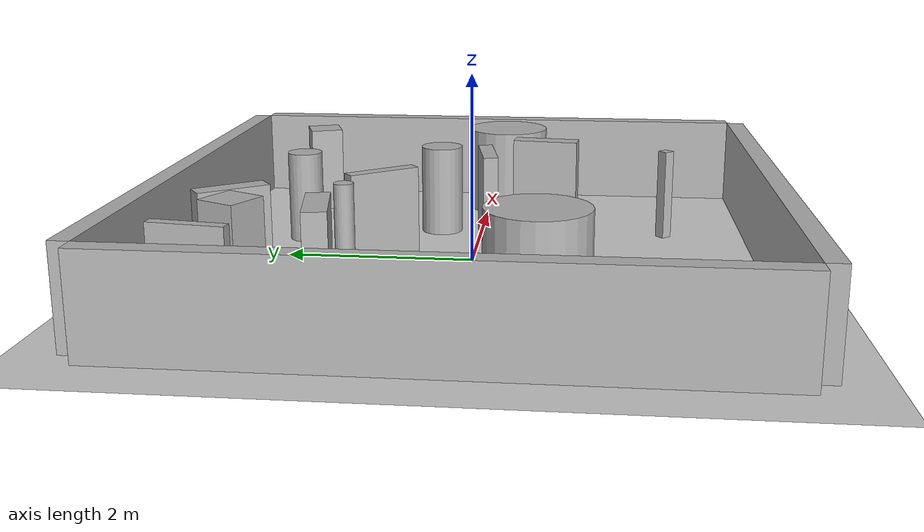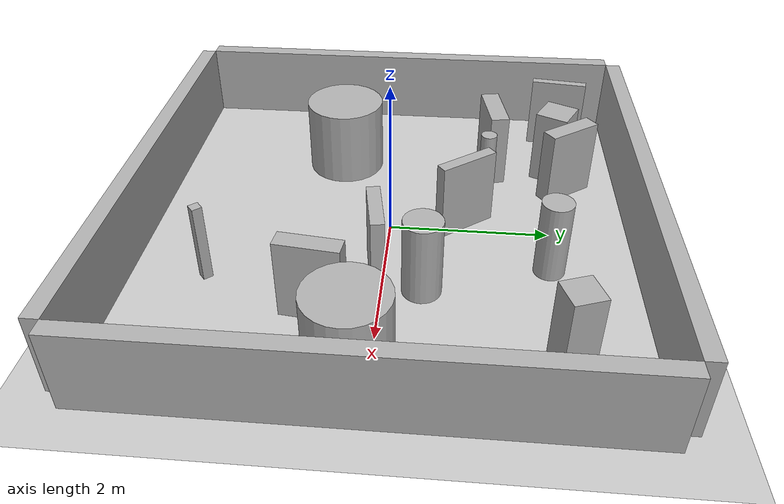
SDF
<sdf version='1.12'>
  <world name='empty'>
    <physics name='1ms' type='ignored'>
      <max_step_size>0.001</max_step_size>
      <real_time_factor>1</real_time_factor>
      <real_time_update_rate>1000</real_time_update_rate>
    </physics>
    <plugin name='gz::sim::systems::Physics' filename='gz-sim-physics-system'/>
    <plugin name='gz::sim::systems::UserCommands' filename='gz-sim-user-commands-system'/>
    <plugin name='gz::sim::systems::SceneBroadcaster' filename='gz-sim-scene-broadcaster-system'/>
    <plugin name='gz::sim::systems::Contact' filename='gz-sim-contact-system'/>
    <gravity>0 0 -9.8000000000000007</gravity>
    <magnetic_field>5.5644999999999998e-06 2.2875799999999999e-05 -4.2388400000000002e-05</magnetic_field>
    <atmosphere type='adiabatic'/>
    <scene>
      <ambient>0.400000006 0.400000006 0.400000006 1</ambient>
      <background>0.699999988 0.699999988 0.699999988 1</background>
      <shadows>true</shadows>
    </scene>
    <model name='ground_plane'>
      <static>true</static>
      <link name='link'>
        <collision name='collision'>
          <geometry>
            <plane>
              <normal>0 0 1</normal>
              <size>100 100</size>
            </plane>
          </geometry>
          <surface>
            <friction>
              <ode/>
            </friction>
            <bounce/>
            <contact/>
          </surface>
        </collision>
        <visual name='visual'>
          <geometry>
            <plane>
              <normal>0 0 1</normal>
              <size>100 100</size>
            </plane>
          </geometry>
          <material>
            <ambient>0.800000012 0.800000012 0.800000012 1</ambient>
            <diffuse>0.800000012 0.800000012 0.800000012 1</diffuse>
            <specular>0.800000012 0.800000012 0.800000012 1</specular>
          </material>
        </visual>
        <pose>0 0 0 0 0 0</pose>
        <inertial>
          <pose>0 0 0 0 0 0</pose>
          <mass>1</mass>
          <inertia>
            <ixx>1</ixx>
            <ixy>0</ixy>
            <ixz>0</ixz>
            <iyy>1</iyy>
            <iyz>0</iyz>
            <izz>1</izz>
          </inertia>
        </inertial>
        <enable_wind>false</enable_wind>
      </link>
      <pose>0 0 0 0 0 0</pose>
      <self_collide>false</self_collide>
    </model>
    <model name='fence_1'>
      <plugin filename="gz-sim-touchplugin-system"
              name="gz::sim::systems::TouchPlugin">
          <target>turtlebot3_burger</target>
          <namespace>fence</namespace>
          <time>0.001</time>
          <enabled>true</enabled>
      </plugin>
      <pose>-3.1 -1.0994676924413233e-07 0.49999932681900072 -1.9602143549339623e-08 -2.4822068816099727e-09 4.907735144525877e-08</pose>
      <link name='box_link'>
        <sensor name='sensor_contact' type='contact'>
            <contact>
                <collision>box_collision</collision>
            </contact>
        </sensor>
        <inertial>
          <inertia>
            <ixx>16.666</ixx>
            <ixy>0</ixy>
            <ixz>0</ixz>
            <iyy>16.666</iyy>
            <iyz>0</iyz>
            <izz>16.666</izz>
          </inertia>
          <mass>10</mass>
          <pose>0 0 0 0 0 0</pose>
        </inertial>
        <collision name='box_collision'>
          <geometry>
            <box>
              <size>0.2 6 1</size>
            </box>
          </geometry>
          <surface>
            <friction>
              <ode/>
            </friction>
            <bounce/>
            <contact/>
          </surface>
        </collision>
        <visual name='box_visual'>
          <geometry>
            <box>
              <size>0.2 6 1</size>
            </box>
          </geometry>
          <material>
            <ambient>0.300000012 0.300000012 0.300000012 1</ambient>
            <diffuse>0.699999988 0.699999988 0.699999988 1</diffuse>
            <specular>1 1 1 1</specular>
          </material>
        </visual>
        <pose>0 0 0 0 0 0</pose>
        <enable_wind>false</enable_wind>
      </link>
      <static>false</static>
      <self_collide>false</self_collide>
    </model>
    <model name='fence_2'>
      <plugin filename="gz-sim-touchplugin-system"
              name="gz::sim::systems::TouchPlugin">
          <target>turtlebot3_burger</target>
          <namespace>fence</namespace>
          <time>0.001</time>
          <enabled>true</enabled>
      </plugin>
      <pose>3.1 -3.5138676988246148e-07 0.49999914610721918 -4.473583661194936e-08 3.4724102697001128e-10 3.9038962250827841e-08</pose>
      <link name='box_link'>
        <sensor name='sensor_contact' type='contact'>
            <contact>
                <collision>box_collision</collision>
            </contact>
        </sensor>
        <inertial>
          <inertia>
            <ixx>16.666</ixx>
            <ixy>0</ixy>
            <ixz>0</ixz>
            <iyy>16.666</iyy>
            <iyz>0</iyz>
            <izz>16.666</izz>
          </inertia>
          <mass>10</mass>
          <pose>0 0 0 0 0 0</pose>
        </inertial>
        <collision name='box_collision'>
          <geometry>
            <box>
              <size>0.2 6 1</size>
            </box>
          </geometry>
          <surface>
            <friction>
              <ode/>
            </friction>
            <bounce/>
            <contact/>
          </surface>
        </collision>
        <visual name='box_visual'>
          <geometry>
            <box>
              <size>0.2 6 1</size>
            </box>
          </geometry>
          <material>
            <ambient>0.300000012 0.300000012 0.300000012 1</ambient>
            <diffuse>0.699999988 0.699999988 0.699999988 1</diffuse>
            <specular>1 1 1 1</specular>
          </material>
        </visual>
        <pose>0 0 0 0 0 0</pose>
        <enable_wind>false</enable_wind>
      </link>
      <static>false</static>
      <self_collide>false</self_collide>
    </model>
    <model name='fence_3'>
      <plugin filename="gz-sim-touchplugin-system"
              name="gz::sim::systems::TouchPlugin">
          <target>turtlebot3_burger</target>
          <namespace>fence</namespace>
          <time>0.001</time>
          <enabled>true</enabled>
      </plugin>
      <pose>-1.2624896680003741e-07 3.1 0.49999892895764775 -6.8684635263476807e-09 8.8765153466269893e-08 -8.9611825445029425e-09</pose>
      <link name='box_link'>
        <sensor name='sensor_contact' type='contact'>
            <contact>
                <collision>box_collision</collision>
            </contact>
        </sensor>
        <inertial>
          <inertia>
            <ixx>16.666</ixx>
            <ixy>0</ixy>
            <ixz>0</ixz>
            <iyy>16.666</iyy>
            <iyz>0</iyz>
            <izz>16.666</izz>
          </inertia>
          <mass>10</mass>
          <pose>0 0 0 0 0 0</pose>
        </inertial>
        <collision name='box_collision'>
          <geometry>
            <box>
              <size>6 0.2 1</size>
            </box>
          </geometry>
          <surface>
            <friction>
              <ode/>
            </friction>
            <bounce/>
            <contact/>
          </surface>
        </collision>
        <visual name='box_visual'>
          <geometry>
            <box>
              <size>6 0.2 1</size>
            </box>
          </geometry>
          <material>
            <ambient>0.300000012 0.300000012 0.300000012 1</ambient>
            <diffuse>0.699999988 0.699999988 0.699999988 1</diffuse>
            <specular>1 1 1 1</specular>
          </material>
        </visual>
        <pose>0 0 0 0 0 0</pose>
        <enable_wind>false</enable_wind>
      </link>
      <static>false</static>
      <self_collide>false</self_collide>
    </model>
    <model name='fence_4'>
      <plugin filename="gz-sim-touchplugin-system"
              name="gz::sim::systems::TouchPlugin">
          <target>turtlebot3_burger</target>
          <namespace>fence</namespace>
          <time>0.001</time>
          <enabled>true</enabled>
      </plugin>
      <pose>3.1165417824908246e-07 -3.1 0.49999908319707276 -4.6068191654925905e-09 -6.3004293022832624e-08 2.8392683620853e-09</pose>
      <link name='box_link'>
        <sensor name='sensor_contact' type='contact'>
            <contact>
                <collision>box_collision</collision>
            </contact>
        </sensor>
        <inertial>
          <inertia>
            <ixx>16.666</ixx>
            <ixy>0</ixy>
            <ixz>0</ixz>
            <iyy>16.666</iyy>
            <iyz>0</iyz>
            <izz>16.666</izz>
          </inertia>
          <mass>10</mass>
          <pose>0 0 0 0 0 0</pose>
        </inertial>
        <collision name='box_collision'>
          <geometry>
            <box>
              <size>6 0.2 1</size>
            </box>
          </geometry>
          <surface>
            <friction>
              <ode/>
            </friction>
            <bounce/>
            <contact/>
          </surface>
        </collision>
        <visual name='box_visual'>
          <geometry>
            <box>
              <size>6 0.2 1</size>
            </box>
          </geometry>
          <material>
            <ambient>0.300000012 0.300000012 0.300000012 1</ambient>
            <diffuse>0.699999988 0.699999988 0.699999988 1</diffuse>
            <specular>1 1 1 1</specular>
          </material>
        </visual>
        <pose>0 0 0 0 0 0</pose>
        <enable_wind>false</enable_wind>
      </link>
      <static>false</static>
      <self_collide>false</self_collide>
    </model>
    <model name='cylinder_0'>
        <plugin filename="gz-sim-touchplugin-system"            name="gz::sim::systems::TouchPlugin">        <target>turtlebot3_burger</target>        <namespace>obstacle</namespace>        <time>0.001</time>        <enabled>true</enabled>    </plugin>    <pose>0.6914615021173498 1.963044617363221 0.5 0.0 0.0 0.0</pose>
        <link name='cylinder_link'>
        <sensor name='sensor_contact' type='contact'>          <contact>              <collision>cylinder_collision</collision>          </contact>      </sensor>      <inertial>
            <inertia>
            <ixx>11.07496973277691</ixx>
            <ixy>0</ixy>
            <ixz>0</ixz>
            <iyy>11.07496973277691</iyy>
            <iyz>0</iyz>
            <izz>2.149939465553822</izz>
            </inertia>
            <mass>120</mass>
            <pose>0 0 0 0 0 0</pose>
        </inertial>
        <collision name='cylinder_collision'>
            <geometry>
            <cylinder>
                <radius>0.189294279960851</radius>
                <length>1.0</length>
            </cylinder>
            </geometry>
            <surface>
            <friction>
                <ode/>
            </friction>
            <bounce/>
            <contact/>
            </surface>
        </collision>
        <visual name='cylinder_visual'>
            <geometry>
            <cylinder>
                <radius>0.189294279960851</radius>
                <length>1.0</length>
            </cylinder>
            </geometry>
            <material>
            <ambient>0.300000012 0.300000012 0.300000012 1</ambient>
            <diffuse>0.699999988 0.699999988 0.699999988 1</diffuse>
            <specular>1 1 1 1</specular>
            </material>
        </visual>
        <pose>0 0 0 0 0 0</pose>
        <enable_wind>false</enable_wind>
        </link>
        <static>false</static>
        <self_collide>false</self_collide>
    </model>
    <model name='cylinder_1'>
        <plugin filename="gz-sim-touchplugin-system"            name="gz::sim::systems::TouchPlugin">        <target>turtlebot3_burger</target>        <namespace>obstacle</namespace>        <time>0.001</time>        <enabled>true</enabled>    </plugin>    <pose>1.169064315733623 0.462959752651976 0.5 0.0 0.0 0.0</pose>
        <link name='cylinder_link'>
        <sensor name='sensor_contact' type='contact'>          <contact>              <collision>cylinder_collision</collision>          </contact>      </sensor>      <inertial>
            <inertia>
            <ixx>11.65682761408987</ixx>
            <ixy>0</ixy>
            <ixz>0</ixz>
            <iyy>11.65682761408987</iyy>
            <iyz>0</iyz>
            <izz>3.313655228179743</izz>
            </inertia>
            <mass>120</mass>
            <pose>0 0 0 0 0 0</pose>
        </inertial>
        <collision name='cylinder_collision'>
            <geometry>
            <cylinder>
                <radius>0.23500550448091434</radius>
                <length>1.0</length>
            </cylinder>
            </geometry>
            <surface>
            <friction>
                <ode/>
            </friction>
            <bounce/>
            <contact/>
            </surface>
        </collision>
        <visual name='cylinder_visual'>
            <geometry>
            <cylinder>
                <radius>0.23500550448091434</radius>
                <length>1.0</length>
            </cylinder>
            </geometry>
            <material>
            <ambient>0.300000012 0.300000012 0.300000012 1</ambient>
            <diffuse>0.699999988 0.699999988 0.699999988 1</diffuse>
            <specular>1 1 1 1</specular>
            </material>
        </visual>
        <pose>0 0 0 0 0 0</pose>
        <enable_wind>false</enable_wind>
        </link>
        <static>false</static>
        <self_collide>false</self_collide>
    </model>
    <model name='cylinder_2'>
        <plugin filename="gz-sim-touchplugin-system"            name="gz::sim::systems::TouchPlugin">        <target>turtlebot3_burger</target>        <namespace>obstacle</namespace>        <time>0.001</time>        <enabled>true</enabled>    </plugin>    <pose>-0.7567749456397475 1.212950950221531 0.5 0.0 0.0 0.0</pose>
        <link name='cylinder_link'>
        <sensor name='sensor_contact' type='contact'>          <contact>              <collision>cylinder_collision</collision>          </contact>      </sensor>      <inertial>
            <inertia>
            <ixx>10.307106692471024</ixx>
            <ixy>0</ixy>
            <ixz>0</ixz>
            <iyy>10.307106692471024</iyy>
            <iyz>0</iyz>
            <izz>0.6142133849420468</izz>
            </inertia>
            <mass>120</mass>
            <pose>0 0 0 0 0 0</pose>
        </inertial>
        <collision name='cylinder_collision'>
            <geometry>
            <cylinder>
                <radius>0.10117751602522229</radius>
                <length>1.0</length>
            </cylinder>
            </geometry>
            <surface>
            <friction>
                <ode/>
            </friction>
            <bounce/>
            <contact/>
            </surface>
        </collision>
        <visual name='cylinder_visual'>
            <geometry>
            <cylinder>
                <radius>0.10117751602522229</radius>
                <length>1.0</length>
            </cylinder>
            </geometry>
            <material>
            <ambient>0.300000012 0.300000012 0.300000012 1</ambient>
            <diffuse>0.699999988 0.699999988 0.699999988 1</diffuse>
            <specular>1 1 1 1</specular>
            </material>
        </visual>
        <pose>0 0 0 0 0 0</pose>
        <enable_wind>false</enable_wind>
        </link>
        <static>false</static>
        <self_collide>false</self_collide>
    </model>
    <model name='cylinder_3'>
        <plugin filename="gz-sim-touchplugin-system"            name="gz::sim::systems::TouchPlugin">        <target>turtlebot3_burger</target>        <namespace>obstacle</namespace>        <time>0.001</time>        <enabled>true</enabled>    </plugin>    <pose>2.4035130023200395 -0.22173195348658048 0.5 0.0 0.0 0.0</pose>
        <link name='cylinder_link'>
        <sensor name='sensor_contact' type='contact'>          <contact>              <collision>cylinder_collision</collision>          </contact>      </sensor>      <inertial>
            <inertia>
            <ixx>16.886137474891783</ixx>
            <ixy>0</ixy>
            <ixz>0</ixz>
            <iyy>16.886137474891783</iyy>
            <iyz>0</iyz>
            <izz>13.772274949783563</izz>
            </inertia>
            <mass>120</mass>
            <pose>0 0 0 0 0 0</pose>
        </inertial>
        <collision name='cylinder_collision'>
            <geometry>
            <cylinder>
                <radius>0.4791011540684556</radius>
                <length>1.0</length>
            </cylinder>
            </geometry>
            <surface>
            <friction>
                <ode/>
            </friction>
            <bounce/>
            <contact/>
            </surface>
        </collision>
        <visual name='cylinder_visual'>
            <geometry>
            <cylinder>
                <radius>0.4791011540684556</radius>
                <length>1.0</length>
            </cylinder>
            </geometry>
            <material>
            <ambient>0.300000012 0.300000012 0.300000012 1</ambient>
            <diffuse>0.699999988 0.699999988 0.699999988 1</diffuse>
            <specular>1 1 1 1</specular>
            </material>
        </visual>
        <pose>0 0 0 0 0 0</pose>
        <enable_wind>false</enable_wind>
        </link>
        <static>false</static>
        <self_collide>false</self_collide>
    </model>
    <model name='cylinder_4'>
        <plugin filename="gz-sim-touchplugin-system"            name="gz::sim::systems::TouchPlugin">        <target>turtlebot3_burger</target>        <namespace>obstacle</namespace>        <time>0.001</time>        <enabled>true</enabled>    </plugin>    <pose>-1.517657130198472 -0.7570396718976435 0.5 0.0 0.0 0.0</pose>
        <link name='cylinder_link'>
        <sensor name='sensor_contact' type='contact'>          <contact>              <collision>cylinder_collision</collision>          </contact>      </sensor>      <inertial>
            <inertia>
            <ixx>17.93438798789078</ixx>
            <ixy>0</ixy>
            <ixz>0</ixz>
            <iyy>17.93438798789078</iyy>
            <iyz>0</iyz>
            <izz>15.868775975781562</izz>
            </inertia>
            <mass>120</mass>
            <pose>0 0 0 0 0 0</pose>
        </inertial>
        <collision name='cylinder_collision'>
            <geometry>
            <cylinder>
                <radius>0.5142758010993317</radius>
                <length>1.0</length>
            </cylinder>
            </geometry>
            <surface>
            <friction>
                <ode/>
            </friction>
            <bounce/>
            <contact/>
            </surface>
        </collision>
        <visual name='cylinder_visual'>
            <geometry>
            <cylinder>
                <radius>0.5142758010993317</radius>
                <length>1.0</length>
            </cylinder>
            </geometry>
            <material>
            <ambient>0.300000012 0.300000012 0.300000012 1</ambient>
            <diffuse>0.699999988 0.699999988 0.699999988 1</diffuse>
            <specular>1 1 1 1</specular>
            </material>
        </visual>
        <pose>0 0 0 0 0 0</pose>
        <enable_wind>false</enable_wind>
        </link>
        <static>false</static>
        <self_collide>false</self_collide>
    </model>
    <model name='rectangle_0'>
        <plugin filename="gz-sim-touchplugin-system"            name="gz::sim::systems::TouchPlugin">        <target>turtlebot3_burger</target>        <namespace>obstacle</namespace>        <time>0.001</time>        <enabled>true</enabled>    </plugin>    <pose>-1.5365155099828467 1.3051178653790494 0.5 0.0 0.0 -2.9631692617553433</pose>
        <link name='box_link'>
        <sensor name='sensor_contact' type='contact'>          <contact>              <collision>box_collision</collision>          </contact>      </sensor>      <inertial>
            <inertia>
            <ixx>10.579259405935302</ixx>
            <ixy>0</ixy>
            <ixz>0</ixz>
            <iyy>15.606772515405023</iyy>
            <iyz>0</iyz>
            <izz>6.186031921340325</izz>
            </inertia>
            <mass>120</mass>
            <pose>0 0 0 0 0 0</pose>
        </inertial>
        <collision name='box_collision'>
            <geometry>
            <box>
                <size>0.7487838483437677 0.2406780849880813 1.0</size>
            </box>
            </geometry>
            <surface>
            <friction>
                <ode/>
            </friction>
            <bounce/>
            <contact/>
            </surface>
        </collision>
        <visual name='box_visual'>
            <geometry>
            <box>
                <size>0.7487838483437677 0.2406780849880813 1.0</size>
            </box>
            </geometry>
            <material>
            <ambient>0.300000012 0.300000012 0.300000012 1</ambient>
            <diffuse>0.699999988 0.699999988 0.699999988 1</diffuse>
            <specular>1 1 1 1</specular>
            </material>
        </visual>
        <pose>0 0 0 0 0 0</pose>
        <enable_wind>false</enable_wind>
        </link>
        <static>false</static>
        <self_collide>false</self_collide>
    </model>
    <model name='rectangle_1'>
        <plugin filename="gz-sim-touchplugin-system"            name="gz::sim::systems::TouchPlugin">        <target>turtlebot3_burger</target>        <namespace>obstacle</namespace>        <time>0.001</time>        <enabled>true</enabled>    </plugin>    <pose>-2.358079136830596 2.2512103755281174 0.5 0.0 0.0 -1.6978826048024123</pose>
        <link name='box_link'>
        <sensor name='sensor_contact' type='contact'>          <contact>              <collision>box_collision</collision>          </contact>      </sensor>      <inertial>
            <inertia>
            <ixx>10.128264865103311</ixx>
            <ixy>0</ixy>
            <ixz>0</ixz>
            <iyy>15.594071754957588</iyy>
            <iyz>0</iyz>
            <izz>5.722336620060901</izz>
            </inertia>
            <mass>120</mass>
            <pose>0 0 0 0 0 0</pose>
        </inertial>
        <collision name='box_collision'>
            <geometry>
            <box>
                <size>0.7479352749374499 0.11325407944233727 1.0</size>
            </box>
            </geometry>
            <surface>
            <friction>
                <ode/>
            </friction>
            <bounce/>
            <contact/>
            </surface>
        </collision>
        <visual name='box_visual'>
            <geometry>
            <box>
                <size>0.7479352749374499 0.11325407944233727 1.0</size>
            </box>
            </geometry>
            <material>
            <ambient>0.300000012 0.300000012 0.300000012 1</ambient>
            <diffuse>0.699999988 0.699999988 0.699999988 1</diffuse>
            <specular>1 1 1 1</specular>
            </material>
        </visual>
        <pose>0 0 0 0 0 0</pose>
        <enable_wind>false</enable_wind>
        </link>
        <static>false</static>
        <self_collide>false</self_collide>
    </model>
    <model name='rectangle_2'>
        <plugin filename="gz-sim-touchplugin-system"            name="gz::sim::systems::TouchPlugin">        <target>turtlebot3_burger</target>        <namespace>obstacle</namespace>        <time>0.001</time>        <enabled>true</enabled>    </plugin>    <pose>1.6461038590620554 -0.7253505353026153 0.5 0.0 0.0 1.4514214444828806</pose>
        <link name='box_link'>
        <sensor name='sensor_contact' type='contact'>          <contact>              <collision>box_collision</collision>          </contact>      </sensor>      <inertial>
            <inertia>
            <ixx>10.492532858054629</ixx>
            <ixy>0</ixy>
            <ixz>0</ixz>
            <iyy>15.634540381376386</iyy>
            <iyz>0</iyz>
            <izz>6.127073239431011</izz>
            </inertia>
            <mass>120</mass>
            <pose>0 0 0 0 0 0</pose>
        </inertial>
        <collision name='box_collision'>
            <geometry>
            <box>
                <size>0.7506357559679917 0.22193081310503676 1.0</size>
            </box>
            </geometry>
            <surface>
            <friction>
                <ode/>
            </friction>
            <bounce/>
            <contact/>
            </surface>
        </collision>
        <visual name='box_visual'>
            <geometry>
            <box>
                <size>0.7506357559679917 0.22193081310503676 1.0</size>
            </box>
            </geometry>
            <material>
            <ambient>0.300000012 0.300000012 0.300000012 1</ambient>
            <diffuse>0.699999988 0.699999988 0.699999988 1</diffuse>
            <specular>1 1 1 1</specular>
            </material>
        </visual>
        <pose>0 0 0 0 0 0</pose>
        <enable_wind>false</enable_wind>
        </link>
        <static>false</static>
        <self_collide>false</self_collide>
    </model>
    <model name='rectangle_3'>
        <plugin filename="gz-sim-touchplugin-system"            name="gz::sim::systems::TouchPlugin">        <target>turtlebot3_burger</target>        <namespace>obstacle</namespace>        <time>0.001</time>        <enabled>true</enabled>    </plugin>    <pose>-0.14730941170126854 0.9343651756497096 0.5 0.0 0.0 2.224099368875935</pose>
        <link name='box_link'>
        <sensor name='sensor_contact' type='contact'>          <contact>              <collision>box_collision</collision>          </contact>      </sensor>      <inertial>
            <inertia>
            <ixx>10.220228378679925</ixx>
            <ixy>0</ixy>
            <ixz>0</ixz>
            <iyy>16.216780224775484</iyy>
            <iyz>0</iyz>
            <izz>6.437008603455407</izz>
            </inertia>
            <mass>120</mass>
            <pose>0 0 0 0 0 0</pose>
        </inertial>
        <collision name='box_collision'>
            <geometry>
            <box>
                <size>0.7884656127425902 0.14840093620995953 1.0</size>
            </box>
            </geometry>
            <surface>
            <friction>
                <ode/>
            </friction>
            <bounce/>
            <contact/>
            </surface>
        </collision>
        <visual name='box_visual'>
            <geometry>
            <box>
                <size>0.7884656127425902 0.14840093620995953 1.0</size>
            </box>
            </geometry>
            <material>
            <ambient>0.300000012 0.300000012 0.300000012 1</ambient>
            <diffuse>0.699999988 0.699999988 0.699999988 1</diffuse>
            <specular>1 1 1 1</specular>
            </material>
        </visual>
        <pose>0 0 0 0 0 0</pose>
        <enable_wind>false</enable_wind>
        </link>
        <static>false</static>
        <self_collide>false</self_collide>
    </model>
    <model name='rectangle_4'>
        <plugin filename="gz-sim-touchplugin-system"            name="gz::sim::systems::TouchPlugin">        <target>turtlebot3_burger</target>        <namespace>obstacle</namespace>        <time>0.001</time>        <enabled>true</enabled>    </plugin>    <pose>0.9176778899190046 -0.09088806963867446 0.5 0.0 0.0 0.1717554160016439</pose>
        <link name='box_link'>
        <sensor name='sensor_contact' type='contact'>          <contact>              <collision>box_collision</collision>          </contact>      </sensor>      <inertial>
            <inertia>
            <ixx>10.26624197569106</ixx>
            <ixy>0</ixy>
            <ixz>0</ixz>
            <iyy>15.506716809749683</iyy>
            <iyz>0</iyz>
            <izz>5.772958785440744</izz>
            </inertia>
            <mass>120</mass>
            <pose>0 0 0 0 0 0</pose>
        </inertial>
        <collision name='box_collision'>
            <geometry>
            <box>
                <size>0.7420725577562941 0.16316922984774415 1.0</size>
            </box>
            </geometry>
            <surface>
            <friction>
                <ode/>
            </friction>
            <bounce/>
            <contact/>
            </surface>
        </collision>
        <visual name='box_visual'>
            <geometry>
            <box>
                <size>0.7420725577562941 0.16316922984774415 1.0</size>
            </box>
            </geometry>
            <material>
            <ambient>0.300000012 0.300000012 0.300000012 1</ambient>
            <diffuse>0.699999988 0.699999988 0.699999988 1</diffuse>
            <specular>1 1 1 1</specular>
            </material>
        </visual>
        <pose>0 0 0 0 0 0</pose>
        <enable_wind>false</enable_wind>
        </link>
        <static>false</static>
        <self_collide>false</self_collide>
    </model>
    <model name='rectangle_5'>
        <plugin filename="gz-sim-touchplugin-system"            name="gz::sim::systems::TouchPlugin">        <target>turtlebot3_burger</target>        <namespace>obstacle</namespace>        <time>0.001</time>        <enabled>true</enabled>    </plugin>    <pose>-1.0273199358940344 2.279931360158421 0.5 0.0 0.0 2.198327351442124</pose>
        <link name='box_link'>
        <sensor name='sensor_contact' type='contact'>          <contact>              <collision>box_collision</collision>          </contact>      </sensor>      <inertial>
            <inertia>
            <ixx>10.47194070420801</ixx>
            <ixy>0</ixy>
            <ixz>0</ixz>
            <iyy>15.398219990493105</iyy>
            <iyz>0</iyz>
            <izz>5.870160694701115</izz>
            </inertia>
            <mass>120</mass>
            <pose>0 0 0 0 0 0</pose>
        </inertial>
        <collision name='box_collision'>
            <geometry>
            <box>
                <size>0.7347257985461723 0.21724196284512087 1.0</size>
            </box>
            </geometry>
            <surface>
            <friction>
                <ode/>
            </friction>
            <bounce/>
            <contact/>
            </surface>
        </collision>
        <visual name='box_visual'>
            <geometry>
            <box>
                <size>0.7347257985461723 0.21724196284512087 1.0</size>
            </box>
            </geometry>
            <material>
            <ambient>0.300000012 0.300000012 0.300000012 1</ambient>
            <diffuse>0.699999988 0.699999988 0.699999988 1</diffuse>
            <specular>1 1 1 1</specular>
            </material>
        </visual>
        <pose>0 0 0 0 0 0</pose>
        <enable_wind>false</enable_wind>
        </link>
        <static>false</static>
        <self_collide>false</self_collide>
    </model>
    <model name='square_0'>
        <plugin filename="gz-sim-touchplugin-system"            name="gz::sim::systems::TouchPlugin">        <target>turtlebot3_burger</target>        <namespace>obstacle</namespace>        <time>0.001</time>        <enabled>true</enabled>    </plugin>    <pose>1.123615160997315 -2.0959547005354535 0.5 0.0 0.0 2.2761656577365654</pose>
        <link name='box_link'>
        <sensor name='sensor_contact' type='contact'>          <contact>              <collision>box_collision</collision>          </contact>      </sensor>      <inertial>
            <inertia>
            <ixx>10.1441110092793</ixx>
            <ixy>0</ixy>
            <ixz>0</ixz>
            <iyy>10.1441110092793</iyy>
            <iyz>0</iyz>
            <izz>0.28822201855859825</izz>
            </inertia>
            <mass>120</mass>
            <pose>0 0 0 0 0 0</pose>
        </inertial>
        <collision name='box_collision'>
            <geometry>
            <box>
                <size>0.12004624495555832 0.12004624495555832 1.0</size>
            </box>
            </geometry>
            <surface>
            <friction>
                <ode/>
            </friction>
            <bounce/>
            <contact/>
            </surface>
        </collision>
        <visual name='box_visual'>
            <geometry>
            <box>
                <size>0.12004624495555832 0.12004624495555832 1.0</size>
            </box>
            </geometry>
            <material>
            <ambient>0.300000012 0.300000012 0.300000012 1</ambient>
            <diffuse>0.699999988 0.699999988 0.699999988 1</diffuse>
            <specular>1 1 1 1</specular>
            </material>
        </visual>
        <pose>0 0 0 0 0 0</pose>
        <enable_wind>false</enable_wind>
        </link>
        <static>false</static>
        <self_collide>false</self_collide>
    </model>
    <model name='square_1'>
        <plugin filename="gz-sim-touchplugin-system"            name="gz::sim::systems::TouchPlugin">        <target>turtlebot3_burger</target>        <namespace>obstacle</namespace>        <time>0.001</time>        <enabled>true</enabled>    </plugin>    <pose>2.1618730275417786 2.0679720524461906 0.5 0.0 0.0 1.9114014506905086</pose>
        <link name='box_link'>
        <sensor name='sensor_contact' type='contact'>          <contact>              <collision>box_collision</collision>          </contact>      </sensor>      <inertial>
            <inertia>
            <ixx>11.416909344801493</ixx>
            <ixy>0</ixy>
            <ixz>0</ixz>
            <iyy>11.416909344801493</iyy>
            <iyz>0</iyz>
            <izz>2.833818689602989</izz>
            </inertia>
            <mass>120</mass>
            <pose>0 0 0 0 0 0</pose>
        </inertial>
        <collision name='box_collision'>
            <geometry>
            <box>
                <size>0.3764185628793424 0.3764185628793424 1.0</size>
            </box>
            </geometry>
            <surface>
            <friction>
                <ode/>
            </friction>
            <bounce/>
            <contact/>
            </surface>
        </collision>
        <visual name='box_visual'>
            <geometry>
            <box>
                <size>0.3764185628793424 0.3764185628793424 1.0</size>
            </box>
            </geometry>
            <material>
            <ambient>0.300000012 0.300000012 0.300000012 1</ambient>
            <diffuse>0.699999988 0.699999988 0.699999988 1</diffuse>
            <specular>1 1 1 1</specular>
            </material>
        </visual>
        <pose>0 0 0 0 0 0</pose>
        <enable_wind>false</enable_wind>
        </link>
        <static>false</static>
        <self_collide>false</self_collide>
    </model>
    <model name='square_2'>
        <plugin filename="gz-sim-touchplugin-system"            name="gz::sim::systems::TouchPlugin">        <target>turtlebot3_burger</target>        <namespace>obstacle</namespace>        <time>0.001</time>        <enabled>true</enabled>    </plugin>    <pose>-1.4596833712175001 2.1451760965976217 0.5 0.0 0.0 -0.4625833065795044</pose>
        <link name='box_link'>
        <sensor name='sensor_contact' type='contact'>          <contact>              <collision>box_collision</collision>          </contact>      </sensor>      <inertial>
            <inertia>
            <ixx>11.884495369696902</ixx>
            <ixy>0</ixy>
            <ixz>0</ixz>
            <iyy>11.884495369696902</iyy>
            <iyz>0</iyz>
            <izz>3.7689907393938036</izz>
            </inertia>
            <mass>120</mass>
            <pose>0 0 0 0 0 0</pose>
        </inertial>
        <collision name='box_collision'>
            <geometry>
            <box>
                <size>0.43410774811063924 0.43410774811063924 1.0</size>
            </box>
            </geometry>
            <surface>
            <friction>
                <ode/>
            </friction>
            <bounce/>
            <contact/>
            </surface>
        </collision>
        <visual name='box_visual'>
            <geometry>
            <box>
                <size>0.43410774811063924 0.43410774811063924 1.0</size>
            </box>
            </geometry>
            <material>
            <ambient>0.300000012 0.300000012 0.300000012 1</ambient>
            <diffuse>0.699999988 0.699999988 0.699999988 1</diffuse>
            <specular>1 1 1 1</specular>
            </material>
        </visual>
        <pose>0 0 0 0 0 0</pose>
        <enable_wind>false</enable_wind>
        </link>
        <static>false</static>
        <self_collide>false</self_collide>
    </model>
    <light name='sun' type='directional'>
      <pose>0 0 10 0 0 0</pose>
      <cast_shadows>true</cast_shadows>
      <intensity>1</intensity>
      <direction>-0.5 0.10000000000000001 -0.90000000000000002</direction>
      <diffuse>0.800000012 0.800000012 0.800000012 1</diffuse>
      <specular>0.200000003 0.200000003 0.200000003 1</specular>
      <attenuation>
        <range>1000</range>
        <linear>0.01</linear>
        <constant>0.90000000000000002</constant>
        <quadratic>0.001</quadratic>
      </attenuation>
      <spot>
        <inner_angle>0</inner_angle>
        <outer_angle>0</outer_angle>
        <falloff>0</falloff>
      </spot>
    </light>
  </world>
</sdf>
